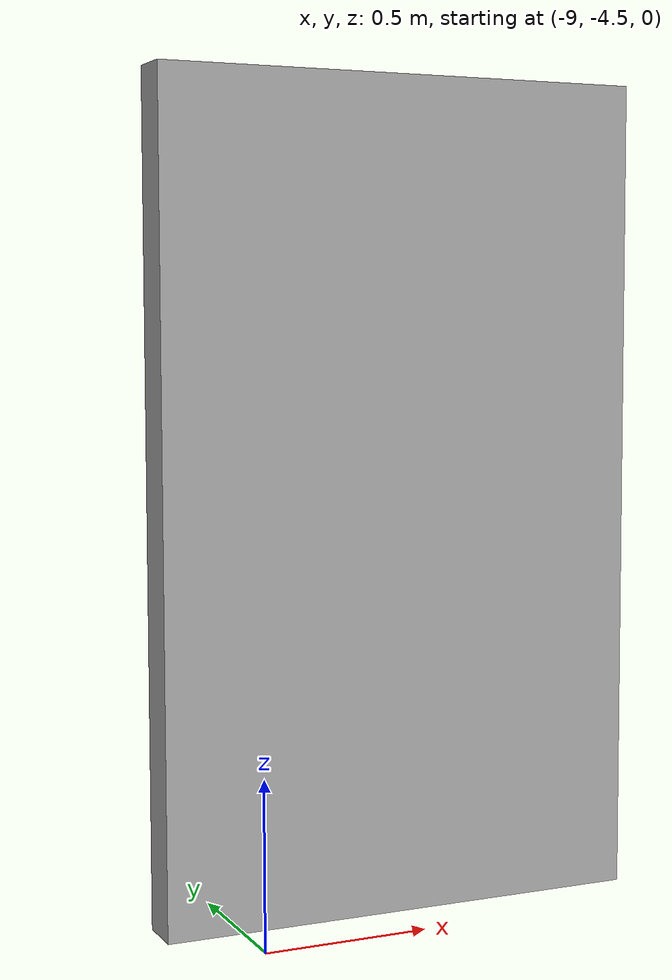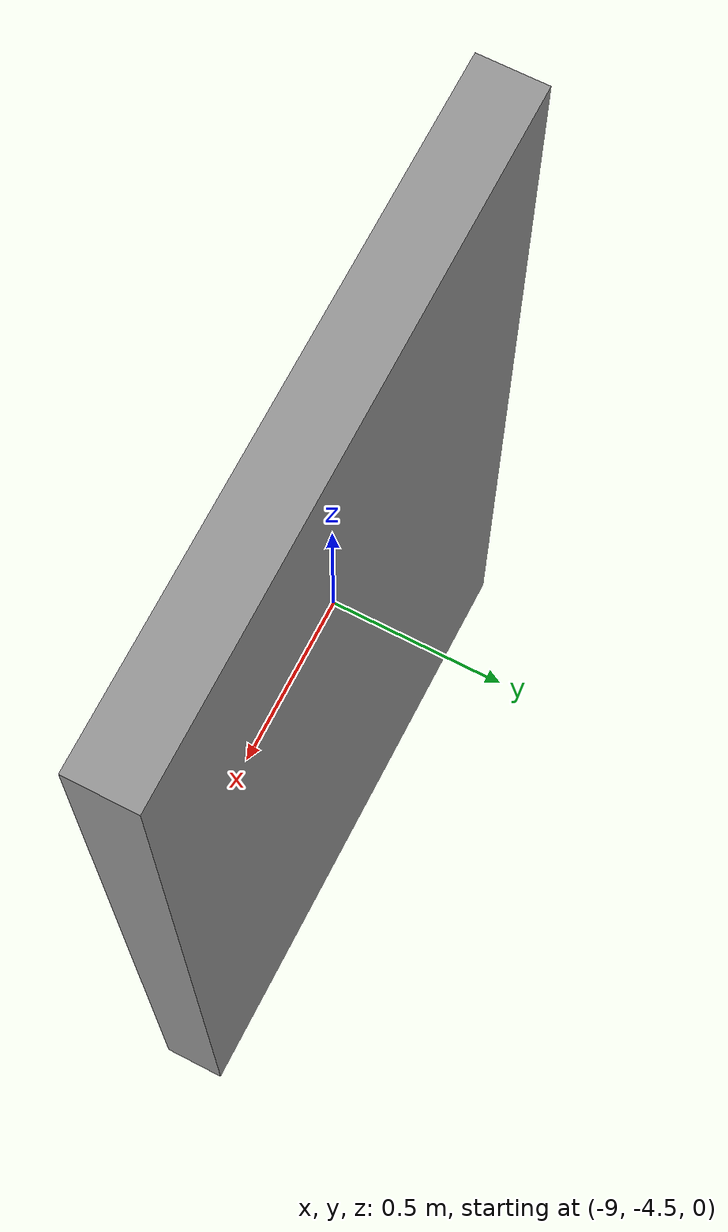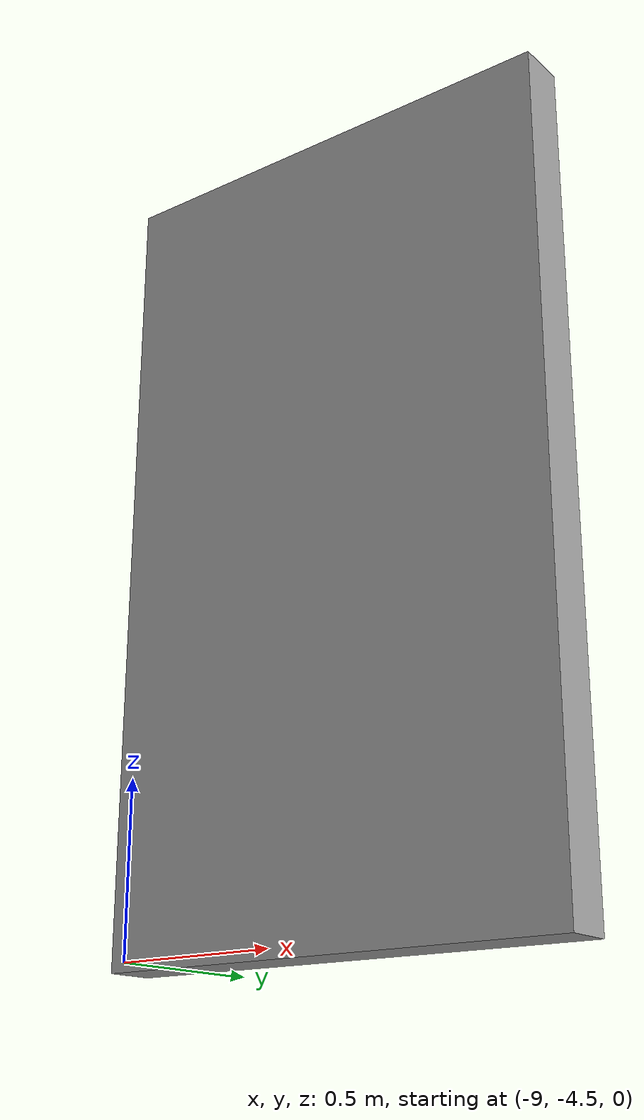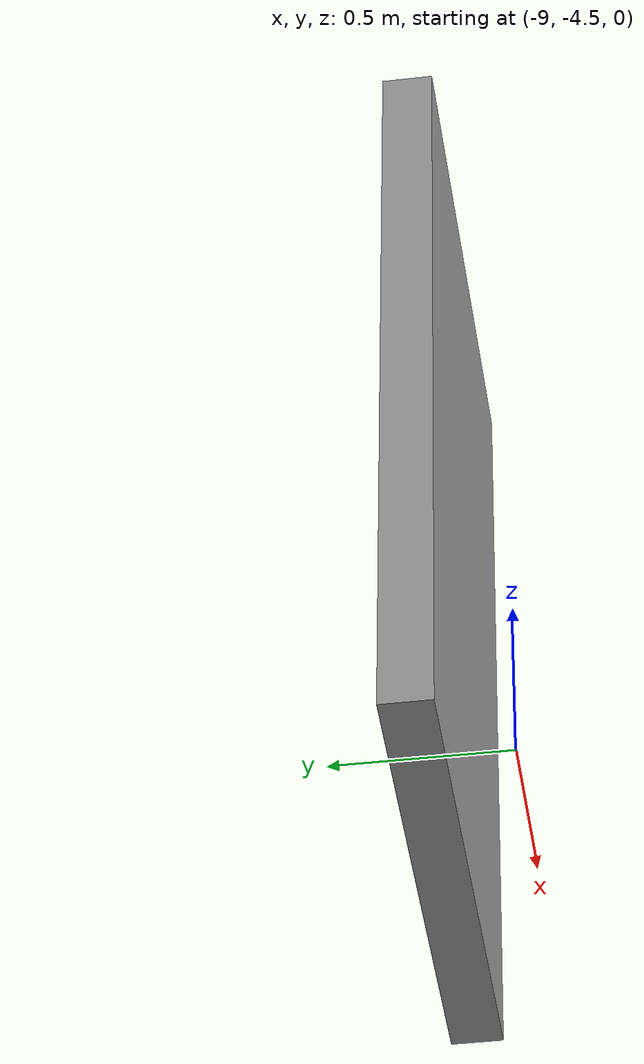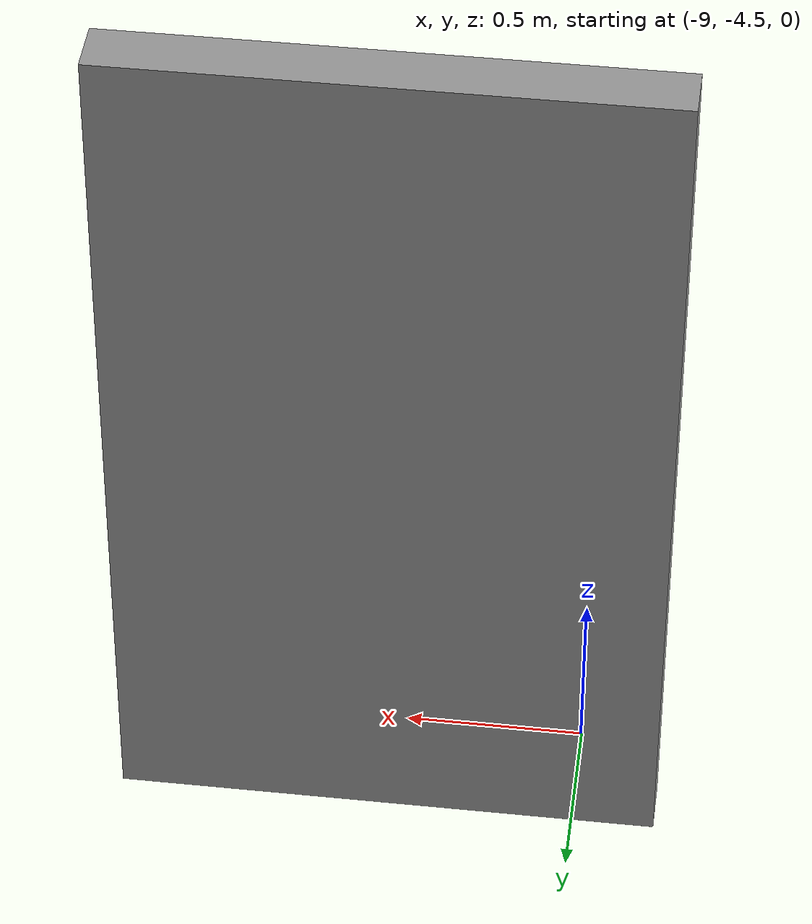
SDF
<?xml version='1.0'?>
<sdf version='1.6'>
  <model name='1.5m_wall'>
    <pose frame=''>-8.47995 -4.23979 0 0 -0 0</pose>
    <link name='Wall_78'>
      <collision name='Wall_78_Collision'>
        <geometry>
          <box>
            <size>1.5 0.15 2.5</size>
          </box>
        </geometry>
        <pose frame=''>0 0 1.25 0 -0 0</pose>
      </collision>
      <visual name='Wall_78_Visual'>
        <pose frame=''>0 0 1.25 0 -0 0</pose>
        <geometry>
          <box>
            <size>1.5 0.15 2.5</size>
          </box>
        </geometry>
        <material>
          <script>
            <uri>file://media/materials/scripts/gazebo.material</uri>
            <name>Gazebo/Grey</name>
          </script>
          <ambient>1 1 1 1</ambient>
        </material>
        <meta>
          <layer>0</layer>
        </meta>
      </visual>
      <pose frame=''>0 0 0 0 -0 0</pose>
    </link>
    <static>1</static>
  </model>
</sdf>
